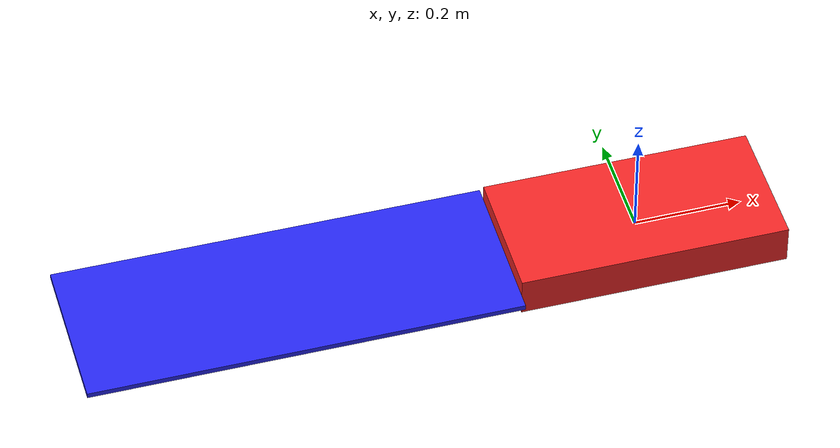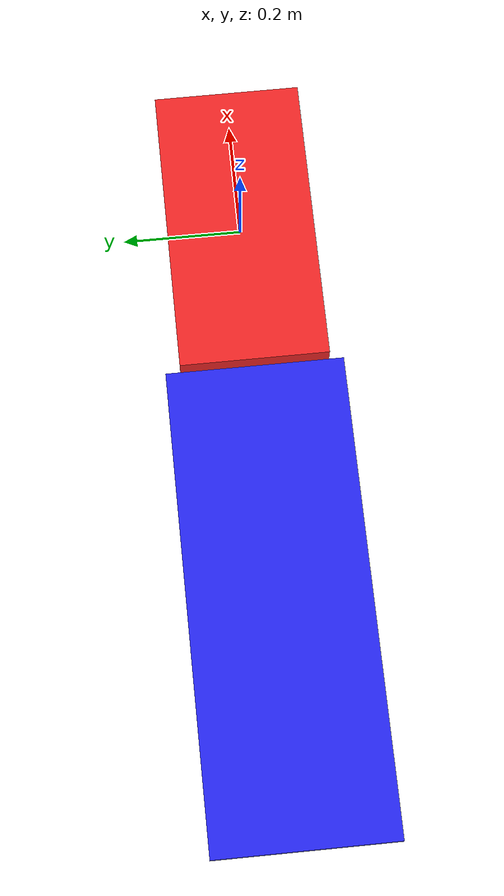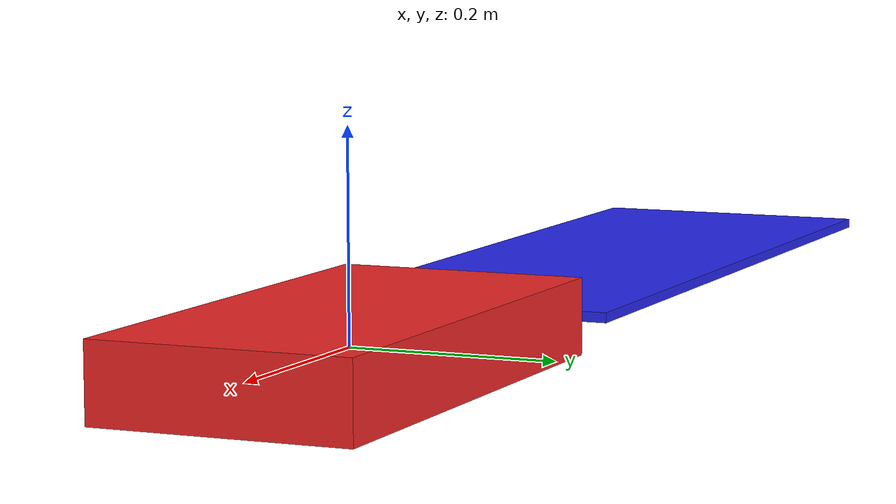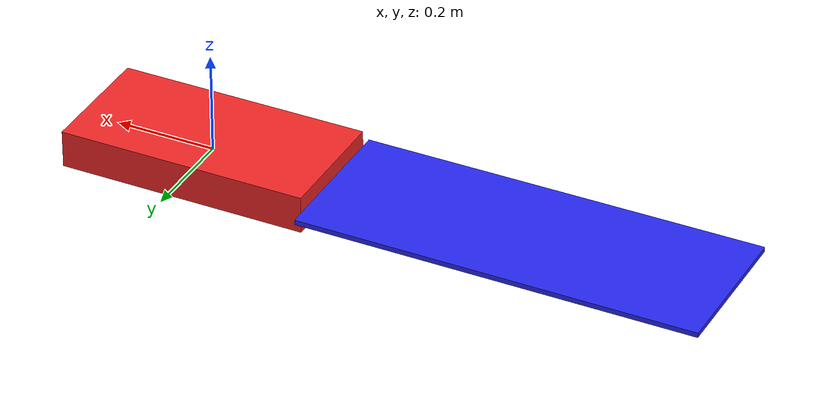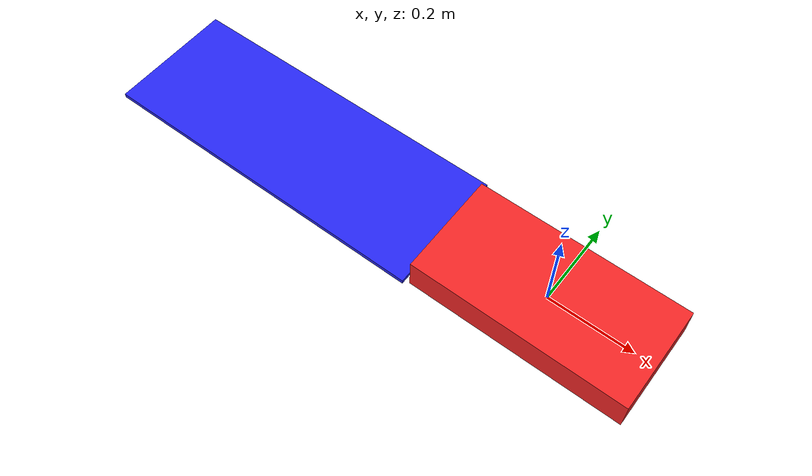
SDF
<?xml version="1.0" encoding='ASCII'?>
<sdf version="1.4">
        <model name="fish_with_caudal_fin">
            <link name="trunk">
                <pose>0 0 0 0 0 0</pose>
                <inertial>
                    <mass>0.01</mass>
                </inertial>
                <visual name="trunk_visual">
                    <geometry>
                        <box>
                            <size>0.5 0.25 0.075</size>
                        </box>
                    </geometry>
                    <material>
                      <diffuse>0.95 0.15 0.15</diffuse>
                    </material>
                </visual>
                <collision name="trunk_collision">
                    <geometry>
                        <box>
                            <size>0.5 0.25 0.075</size>
                        </box>
                    </geometry>
                </collision>
            </link>
            <link name="caudal_fin">
                <pose>-0.65 0 0 0 0 0</pose>
                <inertial>
                    <mass>0.0024</mass>
                </inertial>
                <visual name="fin_visual">
                    <geometry>
                        <box>
                            <size>0.8 0.3 0.01</size>
                        </box>
                    </geometry>
                    <material>
                      <diffuse>0.15 0.15 0.95</diffuse>
                    </material>
                </visual>
                <collision name="fin_collision">
                    <geometry>
                        <box>
                            <size>0.8 0.3 0.01</size>
                        </box>
                    </geometry>
                </collision>
            </link>
            <joint type="prismatic" name="main_joint">
                <axis>
                    <xyz>1 0 0</xyz>
                </axis>
                <parent>world</parent>
                <child>trunk</child>
            </joint>
            <joint type="universal" name="caudal_fin_joint">
                <transformation>0.4 0 0 0 0 0</transformation>
                <axis>
                    <xyz>0 1 0</xyz>
                </axis>
                <axis2>
                    <xyz>1 0 0</xyz>
                </axis2>
                <parent>trunk</parent>
                <child>caudal_fin</child>
            </joint>
        </model>
</sdf>
